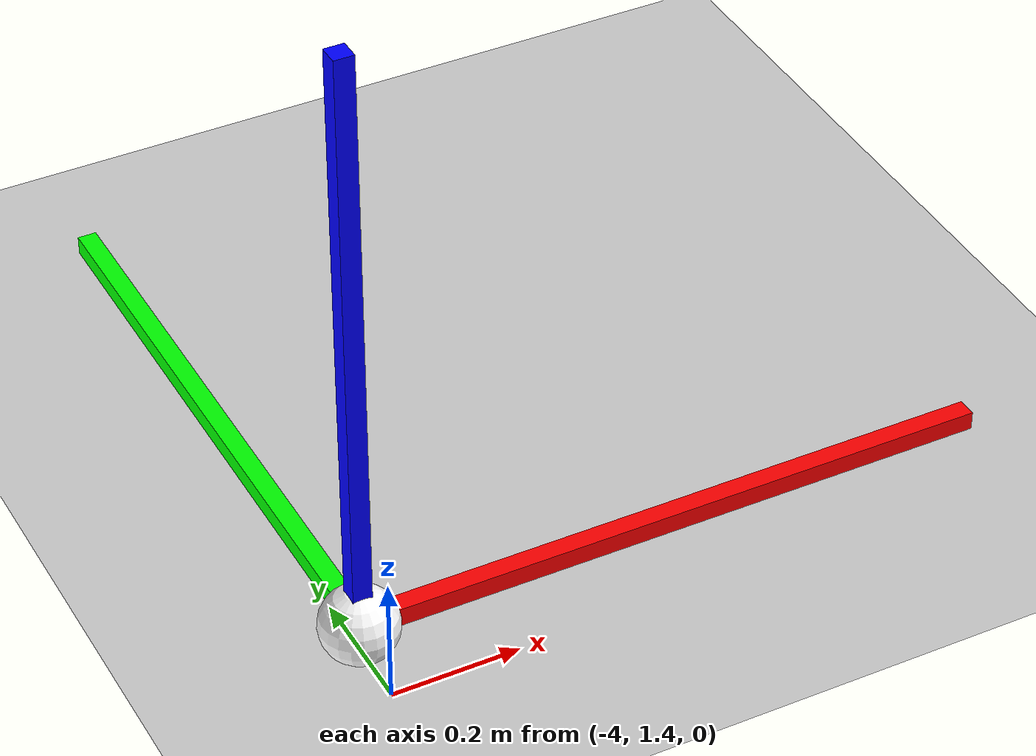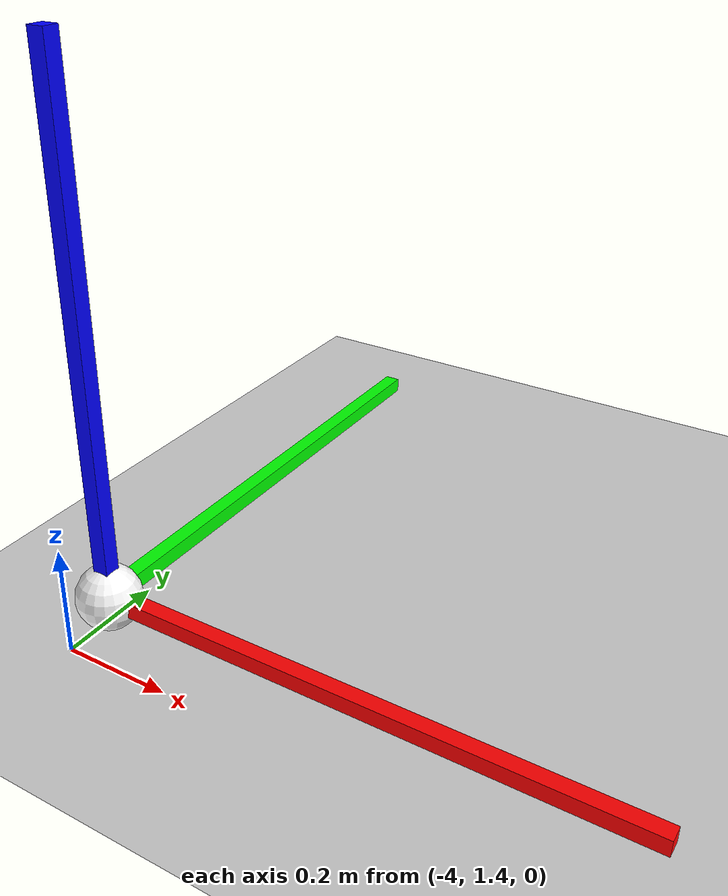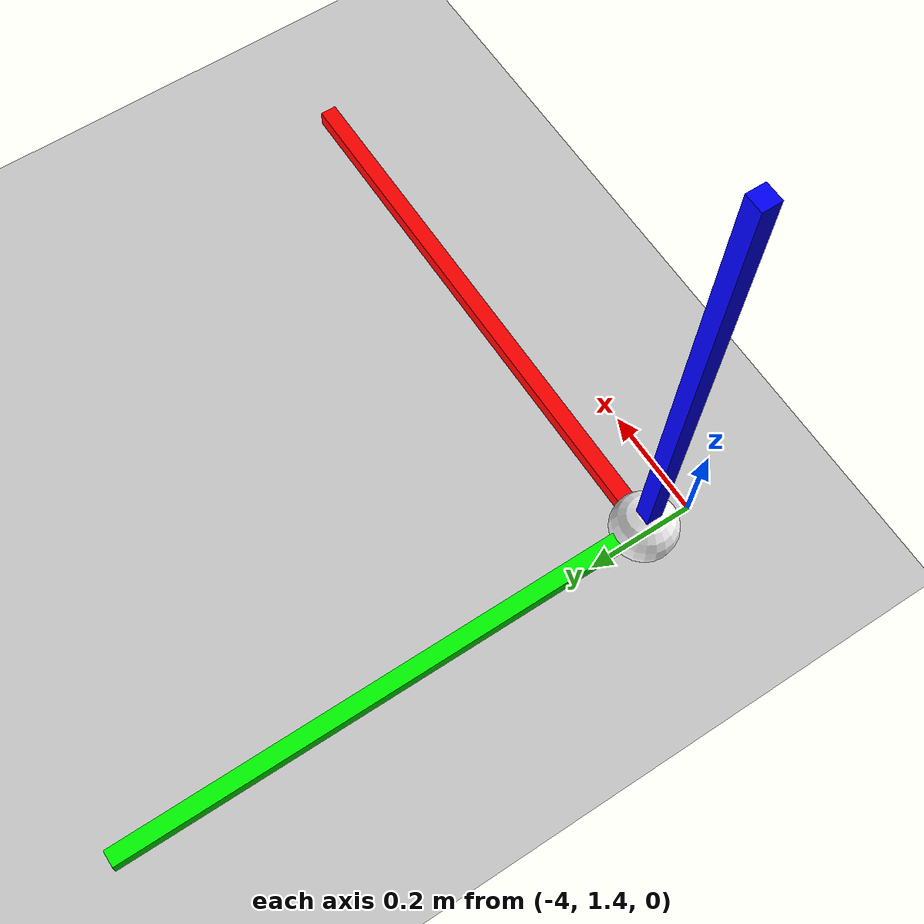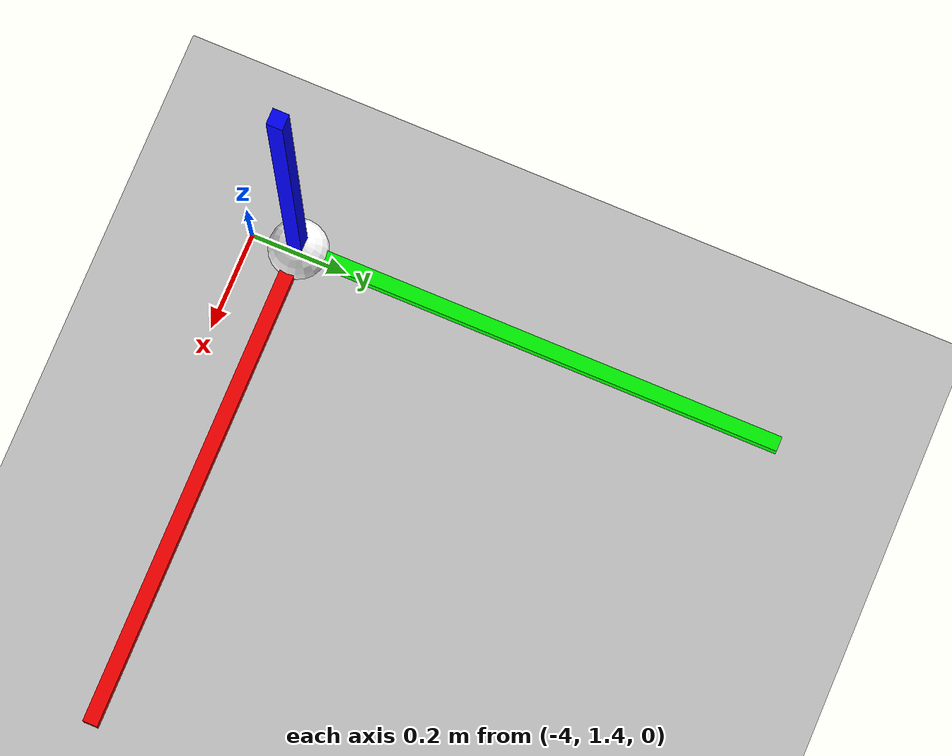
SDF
<?xml version="1.0"?>
<sdf version="1.10">
  <world name="conveyor_world">

    <!-- Physics -->
    <physics name="1ms" type="dart">
      <max_step_size>0.001</max_step_size>
      <real_time_factor>1.0</real_time_factor>
      <real_time_update_rate>1000</real_time_update_rate>
    </physics>

    <!-- Required Gazebo Harmonic plugins for the scene -->
    <plugin
      filename="gz-sim-physics-system"
      name="gz::sim::systems::Physics">
    </plugin>
    <plugin
      filename="gz-sim-user-commands-system"
      name="gz::sim::systems::UserCommands">
    </plugin>
    <plugin
      filename="gz-sim-scene-broadcaster-system"
      name="gz::sim::systems::SceneBroadcaster">
    </plugin>
    <plugin
      filename="gz-sim-contact-system"
      name="gz::sim::systems::Contact">
    </plugin>
    <plugin
      filename="gz-sim-sensors-system"
      name="gz::sim::systems::Sensors">
      <render_engine>ogre2</render_engine>
    </plugin>

    <!-- Lighting -->
    <light type="directional" name="sun">
      <cast_shadows>false</cast_shadows>
      <pose>0 0 10 0 0 0</pose>
      <diffuse>0.8 0.8 0.8 1</diffuse>
      <specular>0.2 0.2 0.2 1</specular>
      <attenuation>
        <range>1000</range>
        <constant>0.9</constant>
        <linear>0.01</linear>
        <quadratic>0.001</quadratic>
      </attenuation>
      <direction>-0.5 0.1 -0.9</direction>
    </light>

    <model name="axis_marker">
      <static>true</static>
      <pose>-4 1.5 0 0 0 0</pose>
      <link name="axes">
        <visual name="x_axis">
          <pose>0.5 0 0.05 0 0 0</pose>
          <geometry>
            <box>
              <size>1.0 0.03 0.03</size>
            </box>
          </geometry>
          <material>
            <ambient>1 0 0 1</ambient>
            <diffuse>1 0 0 1</diffuse>
          </material>
        </visual>
        <visual name="y_axis">
          <pose>0 0.5 0.05 0 0 0</pose>
          <geometry>
            <box>
              <size>0.03 1.0 0.03</size>
            </box>
          </geometry>
          <material>
            <ambient>0 1 0 1</ambient>
            <diffuse>0 1 0 1</diffuse>
          </material>
        </visual>
        <visual name="z_axis">
          <pose>0 0 0.5 0 0 0</pose>
          <geometry>
            <box>
              <size>0.03 0.03 1.0</size>
            </box>
          </geometry>
          <material>
            <ambient>0 0 1 1</ambient>
            <diffuse>0 0 1 1</diffuse>
          </material>
        </visual>
        <visual name="origin_marker">
          <pose>0 0 0.05 0 0 0</pose>
          <geometry>
            <sphere>
              <radius>0.06</radius>
            </sphere>
          </geometry>
          <material>
            <ambient>1 1 1 1</ambient>
            <diffuse>1 1 1 1</diffuse>
          </material>
        </visual>
      </link>
    </model>

    <!-- Ground Plane -->
    <model name="ground_plane">
      <static>true</static>
      <link name="link">
        <collision name="collision">
          <geometry>
            <plane>
              <normal>0 0 1</normal>
              <size>100 100</size>
            </plane>
          </geometry>
          <surface>
            <friction>
              <ode>
                <mu>100</mu>
                <mu2>50</mu2>
              </ode>
            </friction>
          </surface>
        </collision>
        <visual name="visual">
          <geometry>
            <plane>
              <normal>0 0 1</normal>
              <size>100 100</size>
            </plane>
          </geometry>
          <material>
            <ambient>0.8 0.8 0.8 1</ambient>
            <diffuse>0.8 0.8 0.8 1</diffuse>
            <specular>0.8 0.8 0.8 1</specular>
          </material>
        </visual>
      </link>
    </model>

    <!-- GUI -->
    <gui fullscreen="0">
      <plugin filename="MinimalScene" name="3D View">
        <gz-gui>
          <title>3D View</title>
          <property type="bool" key="showTitleBar">false</property>
          <property type="string" key="state">docked</property>
        </gz-gui>
        <engine>ogre2</engine>
        <scene>scene</scene>
        <ambient_light>0.4 0.4 0.4</ambient_light>
        <background_color>0.8 0.8 0.8</background_color>
        <camera_pose>-6 0 6 0 0.5 0</camera_pose>
      </plugin>
      <plugin filename="GzSceneManager" name="Scene Manager">
        <gz-gui>
          <property key="resizable" type="bool">false</property>
          <property key="width" type="double">5</property>
          <property key="height" type="double">5</property>
          <property key="state" type="string">floating</property>
          <property key="showTitleBar" type="bool">false</property>
        </gz-gui>
      </plugin>
      <plugin filename="InteractiveViewControl" name="Interactive view control">
        <gz-gui>
          <property key="resizable" type="bool">false</property>
          <property key="width" type="double">5</property>
          <property key="height" type="double">5</property>
          <property key="state" type="string">floating</property>
          <property key="showTitleBar" type="bool">false</property>
        </gz-gui>
      </plugin>
      <plugin filename="WorldControl" name="World control">
        <gz-gui>
          <title>World control</title>
          <property type="bool" key="showTitleBar">false</property>
          <property type="bool" key="resizable">false</property>
          <property type="double" key="height">72</property>
          <property type="double" key="z">1</property>
          <property type="string" key="state">floating</property>
          <anchors target="3D View">
            <line own="left" target="left"/>
            <line own="bottom" target="bottom"/>
          </anchors>
        </gz-gui>
        <play_pause>true</play_pause>
        <step>true</step>
        <start_paused>false</start_paused>
      </plugin>
      <plugin filename="WorldStats" name="World stats">
        <gz-gui>
          <title>World stats</title>
          <property type="bool" key="showTitleBar">false</property>
          <property type="bool" key="resizable">false</property>
          <property type="double" key="height">110</property>
          <property type="double" key="z">1</property>
          <property type="string" key="state">floating</property>
          <anchors target="3D View">
            <line own="right" target="right"/>
            <line own="bottom" target="bottom"/>
          </anchors>
        </gz-gui>
        <sim_time>true</sim_time>
        <real_time>true</real_time>
        <real_time_factor>true</real_time_factor>
        <iterations>true</iterations>
      </plugin>
    </gui>

  </world>
</sdf>
